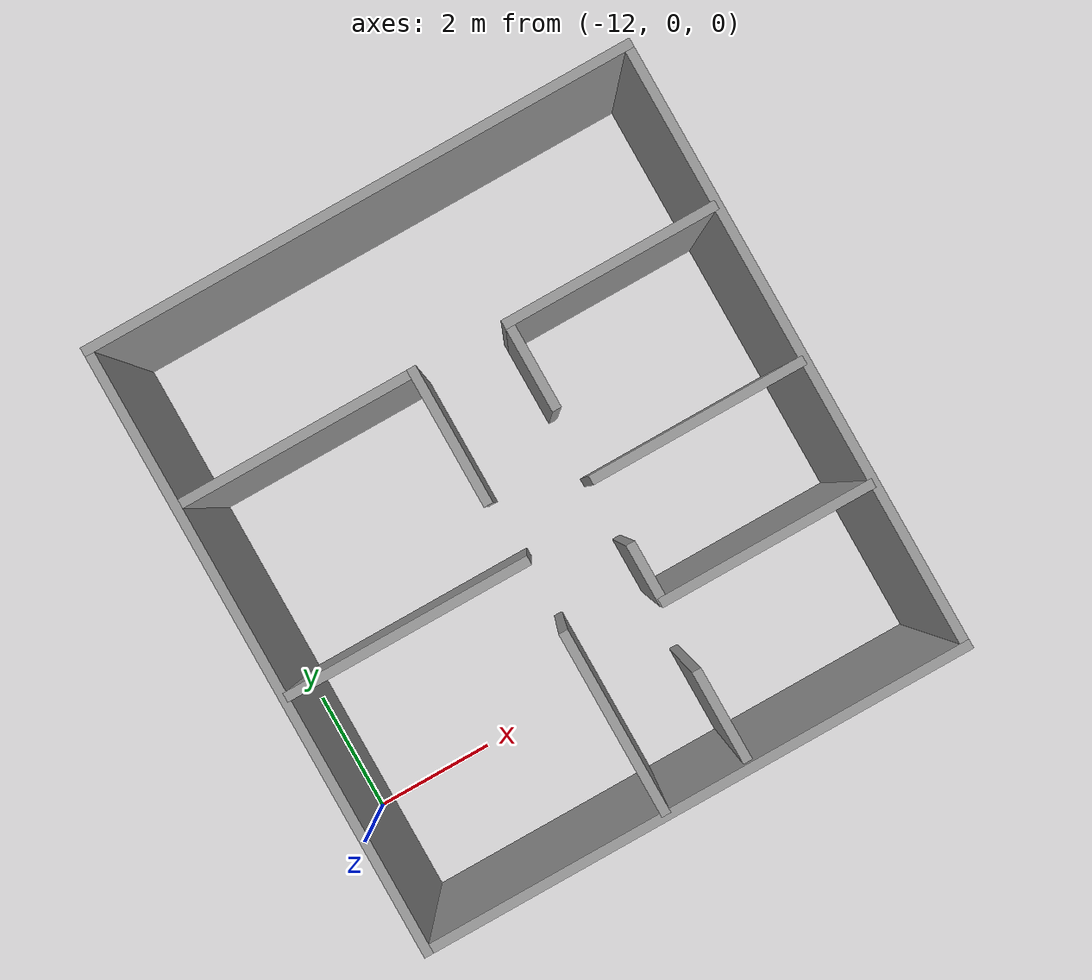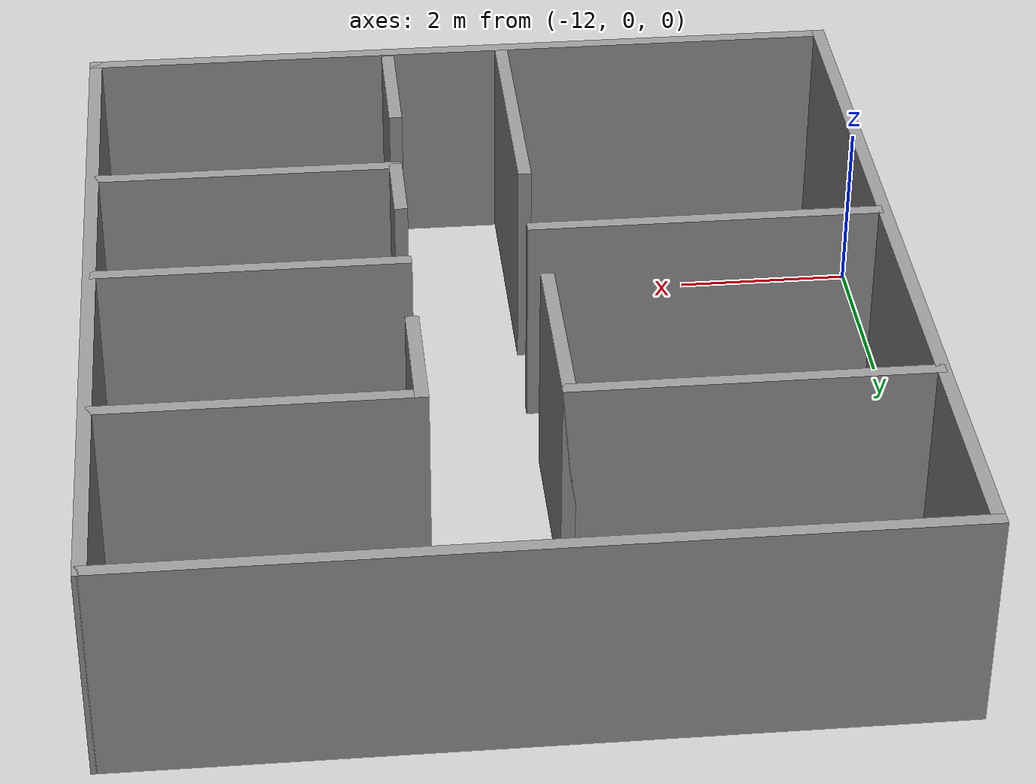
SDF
<?xml version='1.0'?>
<sdf version='1.7'>
  <model name='room2'>
    <pose>-5.96428 3.2344 0 0 -0 0</pose>
    <link name='Wall_0'>
      <collision name='Wall_0_Collision'>
        <geometry>
          <box>
            <size>9 0.15 2.5</size>
          </box>
        </geometry>
        <pose>0 0 1.25 0 -0 0</pose>
      </collision>
      <visual name='Wall_0_Visual'>
        <pose>0 0 1.25 0 -0 0</pose>
        <geometry>
          <box>
            <size>9 0.15 2.5</size>
          </box>
        </geometry>
        <material>
          <script>
            <uri>file://media/materials/scripts/gazebo.material</uri>
            <name>Gazebo/Grey</name>
          </script>
          <ambient>1 1 1 1</ambient>
        </material>
        <meta>
          <layer>0</layer>
        </meta>
      </visual>
      <pose>-1.46428 4.925 0 0 -0 0</pose>
    </link>
    <link name='Wall_10'>
      <collision name='Wall_10_Collision'>
        <geometry>
          <box>
            <size>2.25 0.15 2.5</size>
          </box>
        </geometry>
        <pose>0 0 1.25 0 -0 0</pose>
      </collision>
      <visual name='Wall_10_Visual'>
        <pose>0 0 1.25 0 -0 0</pose>
        <geometry>
          <box>
            <size>2.25 0.15 2.5</size>
          </box>
        </geometry>
        <material>
          <script>
            <uri>file://media/materials/scripts/gazebo.material</uri>
            <name>Gazebo/Grey</name>
          </script>
          <ambient>1 1 1 1</ambient>
        </material>
        <meta>
          <layer>0</layer>
        </meta>
      </visual>
      <pose>-1.99031 1.30907 0 0 -0 -1.5708</pose>
    </link>
    <link name='Wall_12'>
      <collision name='Wall_12_Collision'>
        <geometry>
          <box>
            <size>4 0.15 2.5</size>
          </box>
        </geometry>
        <pose>0 0 1.25 0 -0 0</pose>
      </collision>
      <visual name='Wall_12_Visual'>
        <pose>0 0 1.25 0 -0 0</pose>
        <geometry>
          <box>
            <size>4 0.15 2.5</size>
          </box>
        </geometry>
        <material>
          <script>
            <uri>file://media/materials/scripts/gazebo.material</uri>
            <name>Gazebo/Grey</name>
          </script>
          <ambient>1 1 1 1</ambient>
        </material>
        <meta>
          <layer>0</layer>
        </meta>
      </visual>
      <pose>-3.86905 -0.786697 0 0 -0 0</pose>
    </link>
    <link name='Wall_14'>
      <collision name='Wall_14_Collision'>
        <geometry>
          <box>
            <size>3 0.15 2.5</size>
          </box>
        </geometry>
        <pose>0 0 1.25 0 -0 0</pose>
      </collision>
      <visual name='Wall_14_Visual'>
        <pose>0 0 1.25 0 -0 0</pose>
        <geometry>
          <box>
            <size>3 0.15 2.5</size>
          </box>
        </geometry>
        <material>
          <script>
            <uri>file://media/materials/scripts/gazebo.material</uri>
            <name>Gazebo/Grey</name>
          </script>
          <ambient>1 1 1 1</ambient>
        </material>
        <meta>
          <layer>0</layer>
        </meta>
      </visual>
      <pose>-1.95437 -3.41449 0 0 -0 -1.5708</pose>
    </link>
    <link name='Wall_16'>
      <collision name='Wall_16_Collision'>
        <geometry>
          <box>
            <size>3.5 0.15 2.5</size>
          </box>
        </geometry>
        <pose>0 0 1.25 0 -0 0</pose>
      </collision>
      <visual name='Wall_16_Visual'>
        <pose>0 0 1.25 0 -0 0</pose>
        <geometry>
          <box>
            <size>3.5 0.15 2.5</size>
          </box>
        </geometry>
        <material>
          <script>
            <uri>file://media/materials/scripts/gazebo.material</uri>
            <name>Gazebo/Grey</name>
          </script>
          <ambient>1 1 1 1</ambient>
        </material>
        <meta>
          <layer>0</layer>
        </meta>
      </visual>
      <pose>1.20493 2.3128 0 0 -0 3.14159</pose>
    </link>
    <link name='Wall_19'>
      <collision name='Wall_19_Collision'>
        <geometry>
          <box>
            <size>3.5 0.15 2.5</size>
          </box>
        </geometry>
        <pose>0 0 1.25 0 -0 0</pose>
      </collision>
      <visual name='Wall_19_Visual'>
        <pose>0 0 1.25 0 -0 0</pose>
        <geometry>
          <box>
            <size>3.5 0.15 2.5</size>
          </box>
        </geometry>
        <material>
          <script>
            <uri>file://media/materials/scripts/gazebo.material</uri>
            <name>Gazebo/Grey</name>
          </script>
          <ambient>1 1 1 1</ambient>
        </material>
        <meta>
          <layer>0</layer>
        </meta>
      </visual>
      <pose>1.20493 -0.231562 0 0 -0 3.14159</pose>
    </link>
    <link name='Wall_2'>
      <collision name='Wall_2_Collision'>
        <geometry>
          <box>
            <size>10 0.15 2.5</size>
          </box>
        </geometry>
        <pose>0 0 1.25 0 -0 0</pose>
      </collision>
      <visual name='Wall_2_Visual'>
        <pose>0 0 1.25 0 -0 0</pose>
        <geometry>
          <box>
            <size>10 0.15 2.5</size>
          </box>
        </geometry>
        <material>
          <script>
            <uri>file://media/materials/scripts/gazebo.material</uri>
            <name>Gazebo/Grey</name>
          </script>
          <ambient>1 1 1 1</ambient>
        </material>
        <meta>
          <layer>0</layer>
        </meta>
      </visual>
      <pose>-5.88928 -0 0 0 -0 -1.5708</pose>
    </link>
    <link name='Wall_25'>
      <collision name='Wall_25_Collision'>
        <geometry>
          <box>
            <size>1.5 0.15 2.5</size>
          </box>
        </geometry>
        <pose>0 0 1.25 0 -0 0</pose>
      </collision>
      <visual name='Wall_25_Visual'>
        <pose>0 0 1.25 0 -0 0</pose>
        <geometry>
          <box>
            <size>1.5 0.15 2.5</size>
          </box>
        </geometry>
        <material>
          <script>
            <uri>file://media/materials/scripts/gazebo.material</uri>
            <name>Gazebo/Grey</name>
          </script>
          <ambient>1 1 1 1</ambient>
        </material>
        <meta>
          <layer>0</layer>
        </meta>
      </visual>
      <pose>-0.47007 1.6378 0 0 -0 -1.5708</pose>
    </link>
    <link name='Wall_28'>
      <collision name='Wall_28_Collision'>
        <geometry>
          <box>
            <size>3.5 0.15 2.5</size>
          </box>
        </geometry>
        <pose>0 0 1.25 0 -0 0</pose>
      </collision>
      <visual name='Wall_28_Visual'>
        <pose>0 0 1.25 0 -0 0</pose>
        <geometry>
          <box>
            <size>3.5 0.15 2.5</size>
          </box>
        </geometry>
        <material>
          <script>
            <uri>file://media/materials/scripts/gazebo.material</uri>
            <name>Gazebo/Grey</name>
          </script>
          <ambient>1 1 1 1</ambient>
        </material>
        <meta>
          <layer>0</layer>
        </meta>
      </visual>
      <pose>1.20049 -2.24392 0 0 -0 3.14159</pose>
    </link>
    <link name='Wall_3'>
      <collision name='Wall_3_Collision'>
        <geometry>
          <box>
            <size>9 0.15 2.5</size>
          </box>
        </geometry>
        <pose>0 0 1.25 0 -0 0</pose>
      </collision>
      <visual name='Wall_3_Visual'>
        <pose>0 0 1.25 0 -0 0</pose>
        <geometry>
          <box>
            <size>9 0.15 2.5</size>
          </box>
        </geometry>
        <material>
          <script>
            <uri>file://media/materials/scripts/gazebo.material</uri>
            <name>Gazebo/Grey</name>
          </script>
          <ambient>1 1 1 1</ambient>
        </material>
        <meta>
          <layer>0</layer>
        </meta>
      </visual>
      <pose>-1.46428 -4.925 0 0 -0 0</pose>
    </link>
    <link name='Wall_30'>
      <collision name='Wall_30_Collision'>
        <geometry>
          <box>
            <size>1 0.15 2.5</size>
          </box>
        </geometry>
        <pose>0 0 1.25 0 -0 0</pose>
      </collision>
      <visual name='Wall_30_Visual'>
        <pose>0 0 1.25 0 -0 0</pose>
        <geometry>
          <box>
            <size>1 0.15 2.5</size>
          </box>
        </geometry>
        <material>
          <script>
            <uri>file://media/materials/scripts/gazebo.material</uri>
            <name>Gazebo/Grey</name>
          </script>
          <ambient>1 1 1 1</ambient>
        </material>
        <meta>
          <layer>0</layer>
        </meta>
      </visual>
      <pose>-0.497139 -1.78553 0 0 -0 -1.5708</pose>
    </link>
    <link name='Wall_32'>
      <collision name='Wall_32_Collision'>
        <geometry>
          <box>
            <size>1.5 0.15 2.5</size>
          </box>
        </geometry>
        <pose>0 0 1.25 0 -0 0</pose>
      </collision>
      <visual name='Wall_32_Visual'>
        <pose>0 0 1.25 0 -0 0</pose>
        <geometry>
          <box>
            <size>1.5 0.15 2.5</size>
          </box>
        </geometry>
        <material>
          <script>
            <uri>file://media/materials/scripts/gazebo.material</uri>
            <name>Gazebo/Grey</name>
          </script>
          <ambient>1 1 1 1</ambient>
        </material>
        <meta>
          <layer>0</layer>
        </meta>
      </visual>
      <pose>-0.566531 -4.07546 0 0 -0 -1.5708</pose>
    </link>
    <link name='Wall_4'>
      <collision name='Wall_4_Collision'>
        <geometry>
          <box>
            <size>10 0.15 2.5</size>
          </box>
        </geometry>
        <pose>0 0 1.25 0 -0 0</pose>
      </collision>
      <visual name='Wall_4_Visual'>
        <pose>0 0 1.25 0 -0 0</pose>
        <geometry>
          <box>
            <size>10 0.15 2.5</size>
          </box>
        </geometry>
        <material>
          <script>
            <uri>file://media/materials/scripts/gazebo.material</uri>
            <name>Gazebo/Grey</name>
          </script>
          <ambient>1 1 1 1</ambient>
        </material>
        <meta>
          <layer>0</layer>
        </meta>
      </visual>
      <pose>2.96072 -0 0 0 -0 1.5708</pose>
    </link>
    <link name='Wall_8'>
      <collision name='Wall_8_Collision'>
        <geometry>
          <box>
            <size>4 0.15 2.5</size>
          </box>
        </geometry>
        <pose>0 0 1.25 0 -0 0</pose>
      </collision>
      <visual name='Wall_8_Visual'>
        <pose>0 0 1.25 0 -0 0</pose>
        <geometry>
          <box>
            <size>4 0.15 2.5</size>
          </box>
        </geometry>
        <material>
          <script>
            <uri>file://media/materials/scripts/gazebo.material</uri>
            <name>Gazebo/Grey</name>
          </script>
          <ambient>1 1 1 1</ambient>
        </material>
        <meta>
          <layer>0</layer>
        </meta>
      </visual>
      <pose>-3.91531 2.35907 0 0 -0 0</pose>
    </link>
    <static>1</static>
  </model>
</sdf>
